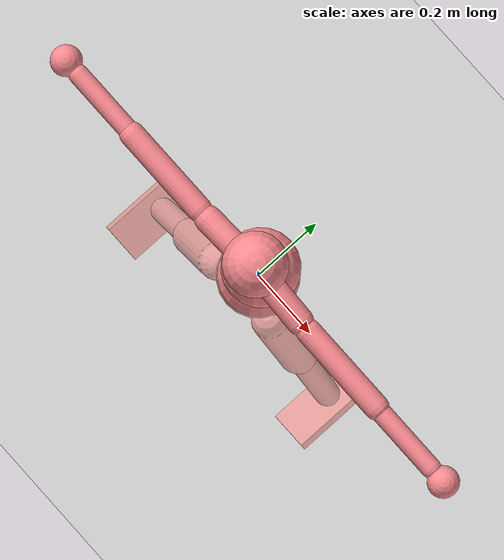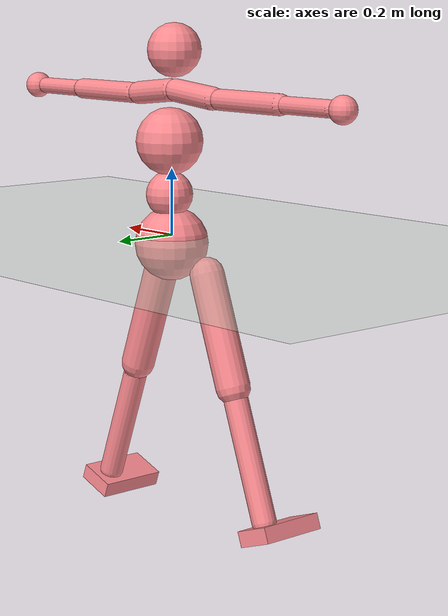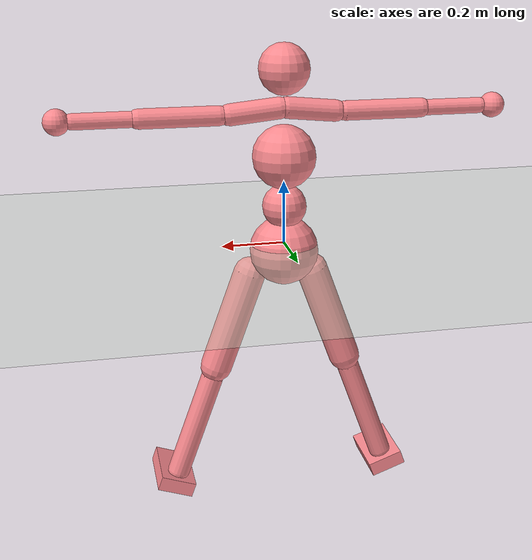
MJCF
<mujoco model="humanoid">
  <compiler angle="radian" inertiafromgeom="true" coordinate="local"/>
  <option timestep="0.00222222" gravity="0 0 -4"/>
  <size njmax="500" nconmax="100"/>
  <visual>
    <quality shadowsize="2048"/>
    <headlight ambient="0.4 0.4 0.4" diffuse="0.8 0.8 0.8" specular="0.3 0.3 0.3"/>
  </visual>
  <statistic extent="3" center="0 0 1"/>
  <default class="main">
    <joint limited="true" armature="0.01"/>
    <geom contype="7" conaffinity="7" condim="1" margin="0.001" material="self" rgba="0.98 0.54 0.56 1"/>
  </default>
  <asset>
    <texture type="2d" name="grid" builtin="checker" mark="edge" rgb1="0.1 0.2 0.3" rgb2="0.2 0.3 0.4" markrgb="0.2 0.3 0.4" width="300" height="300"/>
    <texture type="2d" name="grid_new" builtin="checker" rgb1="0.1 0.3 0.2" rgb2="0.2 0.4 0.3" markrgb="0.8 0.6 0.4" width="1000" height="1000"/>
    <texture type="2d" name="texplane" builtin="checker" rgb1="0 0 0" rgb2="0.8 0.8 0.8" width="100" height="100"/>
    <texture type="2d" name="grass" file="./common/grass.png"/>
    <texture type="skybox" name="sky1" file="./common/sky1.png" gridsize="3 4" gridlayout=".U..LFRB.D.."/>
    <texture type="cube" name="texgeom" builtin="flat" mark="cross" rgb1="0.8 0.6 0.4" rgb2="0.8 0.6 0.4" markrgb="1 1 1" width="127" height="762"/>
    <material name="grid" texture="grid" texuniform="true" reflectance="0.2"/>
    <material name="grid_new" texture="grid_new" texuniform="true" texrepeat="0.2 0.2" reflectance="0.2"/>
    <material name="MatPlane" texture="texplane" texrepeat="60 60" specular="1" shininess="1" reflectance="0.5"/>
    <material name="GrassPlane" texture="grass" texrepeat="400 400" specular="1" shininess="1"/>
    <material name="self" rgba="0.7 0.5 0.3 1"/>
    <material name="self_default" rgba="0.7 0.5 0.3 1"/>
    <material name="self_highlight" rgba="0 0.5 0.3 1"/>
    <material name="effector" rgba="0.7 0.4 0.2 1"/>
    <material name="effector_default" rgba="0.7 0.4 0.2 1"/>
    <material name="effector_highlight" rgba="0 0.5 0.3 1"/>
    <material name="decoration" rgba="0.3 0.5 0.7 1"/>
    <material name="eye" rgba="0 0.2 1 1"/>
    <material name="target" rgba="0.6 0.3 0.3 1"/>
    <material name="target_default" rgba="0.6 0.3 0.3 1"/>
    <material name="target_highlight" rgba="0.6 0.3 0.3 0.4"/>
    <material name="expert" rgba="0.6 0.3 0.3 0.4"/>
  </asset>
  <worldbody>
    <body name="floor" pos="0 0 0">
      <geom name="floor" size="100 100 0.2" pos="0 0 0" type="plane" condim="3" friction="1 0.1 0.1" material="grid_new" rgba="0.8 0.9 0.8 1"/>
      <light pos="0 0 1.3" dir="0 0 -1" directional="true" cutoff="100" exponent="1" diffuse="1 1 1" specular="0.1 0.1 0.1"/>
    </body>
    <body name="root" pos="0 0 0">
      <joint name="root" limited="false" type="free" armature="0"/>
      <geom size="0.11" pos="0 0 -0.024" type="sphere"/>
      <body name="lhipjoint" pos="0 0 0">
        <body name="lfemur" pos="0.0963 -0.0494 -0.0918">
          <joint type="hinge" name="lfemur_z" pos="0 0 0" axis="0 -1 0" range="-1.0472 1.22173"/>
          <joint type="hinge" name="lfemur_y" pos="0 0 0" axis="-0.342 0 0.9397" range="-1.22173 1.22173"/>
          <joint type="hinge" name="lfemur_x" pos="0 0 0" axis="0.9397 0 0.342" range="-2.79253 0.349066"/>
          <geom size="0.052 0.171713" pos="0.06555 0 -0.18015" quat="0.984797 0 -0.173711 0" type="capsule"/>
          <body name="ltibia" pos="0.1311 0 -0.3603">
            <joint type="hinge" name="ltibia_x" pos="0 0 0" axis="0.9397 0 0.342" range="0 2.96706"/>
            <geom size="0.037 0.182183" pos="0.0692 0 -0.19" quat="0.984813 0 -0.173618 0" type="capsule" contype="1" conaffinity="1"/>
            <body name="lfoot" pos="0.1383 0 -0.38">
              <joint type="hinge" name="lfoot_z" pos="0 0 0" axis="-0.342 0 0.9397" range="-1.22173 0.349066"/>
              <joint type="hinge" name="lfoot_y" pos="0 0 0" axis="0 -1 0" range="-0.785398 0.785398"/>
              <joint type="hinge" name="lfoot_x" pos="0 0 0" axis="0.9397 0 0.342" range="-0.785398 1.5708"/>
              <geom size="0.06 0.107 0.024" pos="0.0057 -0.0496 -0.0121" quat="0.984816 0 -0.173603 0" type="box" contype="1" conaffinity="1"/>
            </body>
          </body>
        </body>
      </body>
      <body name="rhipjoint" pos="0 0 0">
        <body name="rfemur" pos="-0.0963 -0.0494 -0.0918">
          <joint type="hinge" name="rfemur_z" pos="0 0 0" axis="0 -1 0" range="-1.22173 1.0472"/>
          <joint type="hinge" name="rfemur_y" pos="0 0 0" axis="0.342 0 0.9397" range="-1.22173 1.22173"/>
          <joint type="hinge" name="rfemur_x" pos="0 0 0" axis="0.9397 0 -0.342" range="-2.79253 0.349066"/>
          <geom size="0.052 0.171713" pos="-0.06555 0 -0.18015" quat="0.984797 0 0.173711 0" type="capsule"/>
          <body name="rtibia" pos="-0.1311 0 -0.3603">
            <joint type="hinge" name="rtibia_x" pos="0 0 0" axis="0.9397 0 -0.342" range="0 2.96706"/>
            <geom size="0.037 0.182183" pos="-0.0692 0 -0.19" quat="0.984813 0 0.173618 0" type="capsule" contype="2" conaffinity="2"/>
            <body name="rfoot" pos="-0.1383 0 -0.38">
              <joint type="hinge" name="rfoot_z" pos="0 0 0" axis="0.342 0 0.9397" range="-0.349066 1.22173"/>
              <joint type="hinge" name="rfoot_y" pos="0 0 0" axis="0 -1 0" range="-0.785398 0.785398"/>
              <joint type="hinge" name="rfoot_x" pos="0 0 0" axis="0.9397 0 -0.342" range="-0.785398 1.5708"/>
              <geom size="0.06 0.107 0.024" pos="-0.0057 -0.0496 -0.0121" quat="0.984816 0 0.173603 0" type="box" contype="2" conaffinity="2"/>
            </body>
          </body>
        </body>
      </body>
      <body name="lowerback" pos="0 0 0">
        <body name="upperback" pos="0.0006 0.0081 0.1132">
          <joint type="hinge" name="upperback_z" pos="0 0 0" axis="0 -1 0" range="-0.523599 0.523599"/>
          <joint type="hinge" name="upperback_y" pos="0 0 0" axis="0 0 1" range="-0.523599 0.523599"/>
          <joint type="hinge" name="upperback_x" pos="0 0 0" axis="1 0 0" range="-0.349066 0.785398"/>
          <geom size="0.07" pos="0 0 0.01" type="sphere"/>
          <body name="thorax" pos="0.0005 -0.001 0.1136">
            <geom size="0.1" pos="0 0 0.054" type="sphere"/>
            <body name="lowerneck" pos="-0.0001 -0.0047 0.1139">
              <joint type="hinge" name="lowerneck_z" pos="0 0 0" axis="0 -1 0" range="-0.523599 0.523599"/>
              <joint type="hinge" name="lowerneck_y" pos="0 0 0" axis="0 0 1" range="-0.523599 0.523599"/>
              <joint type="hinge" name="lowerneck_x" pos="0 0 0" axis="1 0 0" range="-0.349066 0.785398"/>
              <geom size="0.08" pos="-0.0033 -0.0107 0.2065" type="sphere"/>
              <body name="upperneck" pos="-0.0033 -0.0107 0.0905">
                <body name="head" pos="0.001 0.0045 0.09">
                  <camera pos="0.0013 0.0038 -0.5212" quat="0 0 0.707107 0.707107"/>
                </body>
              </body>
              <body name="lclavicle" pos="-0.0033 -0.0107 0.0905">
                <joint type="hinge" name="lclavicle_z" pos="0.0033 0.0107 -0.0905" axis="0 -1 0" range="-0.2 0.349066"/>
                <joint type="hinge" name="lclavicle_y" pos="0.0033 0.0107 -0.0905" axis="0 0 1" range="-0.349066 0.174533"/>
                <geom size="0.034 0.0787335" pos="0.09065 -0.0033 -0.00955" quat="0.743231 -0.0239246 -0.668607 0" type="capsule"/>
                <body name="lhumerus" pos="0.1813 -0.0066 -0.0191">
                  <joint type="hinge" name="lhumerus_z" pos="0 0 0" axis="0 0.866019 -0.500011" range="-1.5708 1.5708"/>
                  <joint type="hinge" name="lhumerus_y" pos="0 0 0" axis="-1 0 0" range="-1.5708 1.5708"/>
                  <joint type="hinge" name="lhumerus_x" pos="0 0 0" axis="0 -0.500011 -0.866019" range="-1.0472 1.5708"/>
                  <geom size="0.031 0.12295" pos="0.14045 0 0" quat="0.707107 0 -0.707107 0" type="capsule"/>
                  <body name="lradius" pos="0.2809 0 0">
                    <joint type="hinge" name="lradius_x" pos="0 0 0" axis="0 -0.500011 -0.866019" range="-0.174533 2.96706"/>
                    <geom size="0.025 0.08875" pos="0.08875 0 0" quat="0.707107 0 -0.707107 0" type="capsule"/>
                    <body name="lwrist" pos="0.1775 0 0">
                      <geom size="0.04" pos="0.044 0 0" type="sphere"/>
                    </body>
                  </body>
                </body>
              </body>
              <body name="rclavicle" pos="0.0013 -0.0107 0.0905">
                <joint type="hinge" name="rclavicle_z" pos="-0.0033 0.0107 -0.0905" axis="0 -1 0" range="-0.349066 0.2"/>
                <joint type="hinge" name="rclavicle_y" pos="-0.0033 0.0107 -0.0905" axis="0 0 1" range="-0.174533 0.349066"/>
                <geom size="0.034 0.0787335" pos="-0.09065 -0.0033 -0.00955" quat="0.743231 -0.0239246 0.668607 0" type="capsule"/>
                <body name="rhumerus" pos="-0.1813 -0.0066 -0.0191">
                  <joint type="hinge" name="rhumerus_z" pos="0 0 0" axis="0 0.866019 -0.500011" range="-1.5708 1.5708"/>
                  <joint type="hinge" name="rhumerus_y" pos="0 0 0" axis="1 0 0" range="-1.5708 1.5708"/>
                  <joint type="hinge" name="rhumerus_x" pos="0 0 0" axis="0 0.500011 0.866019" range="-1.5708 1.0472"/>
                  <geom size="0.031 0.12295" pos="-0.14045 0 0" quat="0.707107 0 0.707107 0" type="capsule"/>
                  <body name="rradius" pos="-0.2809 0 0">
                    <joint type="hinge" name="rradius_x" pos="0 0 0" axis="0 0.500011 0.866019" range="-0.174533 2.96706"/>
                    <geom size="0.025 0.08875" pos="-0.08875 0 0" quat="0.707107 0 0.707107 0" type="capsule"/>
                    <body name="rwrist" pos="-0.1775 0 0">
                      <geom size="0.04" pos="-0.044 0 0" type="sphere"/>
                    </body>
                  </body>
                </body>
              </body>
            </body>
          </body>
        </body>
      </body>
    </body>
  </worldbody>
  <actuator>
    <general name="lfemur_z" joint="lfemur_z"/>
    <general name="lfemur_y" joint="lfemur_y"/>
    <general name="lfemur_x" joint="lfemur_x"/>
    <general name="ltibia_x" joint="ltibia_x"/>
    <general name="lfoot_z" joint="lfoot_z"/>
    <general name="lfoot_y" joint="lfoot_y"/>
    <general name="lfoot_x" joint="lfoot_x"/>
    <general name="rfemur_z" joint="rfemur_z"/>
    <general name="rfemur_y" joint="rfemur_y"/>
    <general name="rfemur_x" joint="rfemur_x"/>
    <general name="rtibia_x" joint="rtibia_x"/>
    <general name="rfoot_z" joint="rfoot_z"/>
    <general name="rfoot_y" joint="rfoot_y"/>
    <general name="rfoot_x" joint="rfoot_x"/>
    <general name="upperback_z" joint="upperback_z"/>
    <general name="upperback_y" joint="upperback_y"/>
    <general name="upperback_x" joint="upperback_x"/>
    <general name="lowerneck_z" joint="lowerneck_z"/>
    <general name="lowerneck_y" joint="lowerneck_y"/>
    <general name="lowerneck_x" joint="lowerneck_x"/>
    <general name="lclavicle_z" joint="lclavicle_z"/>
    <general name="lclavicle_y" joint="lclavicle_y"/>
    <general name="lhumerus_z" joint="lhumerus_z"/>
    <general name="lhumerus_y" joint="lhumerus_y"/>
    <general name="lhumerus_x" joint="lhumerus_x"/>
    <general name="lradius_x" joint="lradius_x"/>
    <general name="rclavicle_z" joint="rclavicle_z"/>
    <general name="rclavicle_y" joint="rclavicle_y"/>
    <general name="rhumerus_z" joint="rhumerus_z"/>
    <general name="rhumerus_y" joint="rhumerus_y"/>
    <general name="rhumerus_x" joint="rhumerus_x"/>
    <general name="rradius_x" joint="rradius_x"/>
  </actuator>
  <contact>
        <exclude name="exclude_lfemur_floor" body1="floor" body2="lfemur"/>
        <exclude name="exclude_ltibia_floor" body1="floor" body2="ltibia"/>
        <exclude name="exclude_rfemur_floor" body1="floor" body2="rfemur"/>
        <exclude name="exclude_rtibia_floor" body1="floor" body2="rtibia"/>
        <exclude name="exclude_upperback_floor" body1="floor" body2="upperback"/>
        <exclude name="exclude_lclavicle_floor" body1="floor" body2="lclavicle"/>
        <exclude name="exclude_rclavicle_floor" body1="floor" body2="rclavicle"/>
        <exclude name="exclude_lhumerus_floor" body1="floor" body2="lhumerus"/>
        <exclude name="exclude_rhumerus_floor" body1="floor" body2="rhumerus"/>
        <exclude name="exclude_lradius_floor" body1="floor" body2="lradius"/>
        <exclude name="exclude_rradius_floor" body1="floor" body2="rradius"/>

        <exclude name="exclude_lfemur_lfoot" body1="lfoot" body2="lfemur"/>
        <exclude name="exclude_ltibia_lfoot" body1="lfoot" body2="ltibia"/>
        <exclude name="exclude_rfemur_lfoot" body1="lfoot" body2="rfemur"/>
        <exclude name="exclude_rtibia_lfoot" body1="lfoot" body2="rtibia"/>
        <exclude name="exclude_upperback_lfoot" body1="lfoot" body2="upperback"/>
        <exclude name="exclude_lclavicle_lfoot" body1="lfoot" body2="lclavicle"/>
        <exclude name="exclude_rclavicle_lfoot" body1="lfoot" body2="rclavicle"/>
        <exclude name="exclude_lhumerus_lfoot" body1="lfoot" body2="lhumerus"/>
        <exclude name="exclude_rhumerus_lfoot" body1="lfoot" body2="rhumerus"/>
        <exclude name="exclude_lradius_lfoot" body1="lfoot" body2="lradius"/>
        <exclude name="exclude_rradius_lfoot" body1="lfoot" body2="rradius"/>

        <exclude name="exclude_lfemur_rfoot" body1="rfoot" body2="lfemur"/>
        <exclude name="exclude_ltibia_rfoot" body1="rfoot" body2="ltibia"/>
        <exclude name="exclude_rfemur_rfoot" body1="rfoot" body2="rfemur"/>
        <exclude name="exclude_rtibia_rfoot" body1="rfoot" body2="rtibia"/>
        <exclude name="exclude_upperback_rfoot" body1="rfoot" body2="upperback"/>
        <exclude name="exclude_lclavicle_rfoot" body1="rfoot" body2="lclavicle"/>
        <exclude name="exclude_rclavicle_rfoot" body1="rfoot" body2="rclavicle"/>
        <exclude name="exclude_lhumerus_rfoot" body1="rfoot" body2="lhumerus"/>
        <exclude name="exclude_rhumerus_rfoot" body1="rfoot" body2="rhumerus"/>
        <exclude name="exclude_lradius_rfoot" body1="rfoot" body2="lradius"/>
        <exclude name="exclude_rradius_rfoot" body1="rfoot" body2="rradius"/>

        <exclude name="exclude_lfemur_thorax" body1="thorax" body2="lfemur"/>
        <exclude name="exclude_ltibia_thorax" body1="thorax" body2="ltibia"/>
        <exclude name="exclude_rfemur_thorax" body1="thorax" body2="rfemur"/>
        <exclude name="exclude_rtibia_thorax" body1="thorax" body2="rtibia"/>
        <exclude name="exclude_upperback_thorax" body1="thorax" body2="upperback"/>
        <exclude name="exclude_lclavicle_thorax" body1="thorax" body2="lclavicle"/>
        <exclude name="exclude_rclavicle_thorax" body1="thorax" body2="rclavicle"/>
        <exclude name="exclude_lhumerus_thorax" body1="thorax" body2="lhumerus"/>
        <exclude name="exclude_rhumerus_thorax" body1="thorax" body2="rhumerus"/>
        <exclude name="exclude_lradius_thorax" body1="thorax" body2="lradius"/>
        <exclude name="exclude_rradius_thorax" body1="thorax" body2="rradius"/>

        <exclude name="exclude_lfemur_lowerneck" body1="lowerneck" body2="lfemur"/>
        <exclude name="exclude_ltibia_lowerneck" body1="lowerneck" body2="ltibia"/>
        <exclude name="exclude_rfemur_lowerneck" body1="lowerneck" body2="rfemur"/>
        <exclude name="exclude_rtibia_lowerneck" body1="lowerneck" body2="rtibia"/>
        <exclude name="exclude_upperback_lowerneck" body1="lowerneck" body2="upperback"/>
        <exclude name="exclude_lclavicle_lowerneck" body1="lowerneck" body2="lclavicle"/>
        <exclude name="exclude_rclavicle_lowerneck" body1="lowerneck" body2="rclavicle"/>
        <exclude name="exclude_lhumerus_lowerneck" body1="lowerneck" body2="lhumerus"/>
        <exclude name="exclude_rhumerus_lowerneck" body1="lowerneck" body2="rhumerus"/>
        <exclude name="exclude_lradius_lowerneck" body1="lowerneck" body2="lradius"/>
        <exclude name="exclude_rradius_lowerneck" body1="lowerneck" body2="rradius"/>

        <exclude name="exclude_lfemur_upperback" body1="upperback" body2="lfemur"/>
        <exclude name="exclude_ltibia_upperback" body1="upperback" body2="ltibia"/>
        <exclude name="exclude_rfemur_upperback" body1="upperback" body2="rfemur"/>
        <exclude name="exclude_rtibia_upperback" body1="upperback" body2="rtibia"/>
        <exclude name="exclude_lclavicle_upperback" body1="upperback" body2="lclavicle"/>
        <exclude name="exclude_rclavicle_upperback" body1="upperback" body2="rclavicle"/>
        <exclude name="exclude_lhumerus_upperback" body1="upperback" body2="lhumerus"/>
        <exclude name="exclude_rhumerus_upperback" body1="upperback" body2="rhumerus"/>
        <exclude name="exclude_lradius_upperback" body1="upperback" body2="lradius"/>
        <exclude name="exclude_rradius_upperback" body1="upperback" body2="rradius"/>

        <exclude name="exclude_lfemur_lhumerus" body1="lhumerus" body2="lfemur"/>
        <exclude name="exclude_ltibia_lhumerus" body1="lhumerus" body2="ltibia"/>
        <exclude name="exclude_rfemur_lhumerus" body1="lhumerus" body2="rfemur"/>
        <exclude name="exclude_rtibia_lhumerus" body1="lhumerus" body2="rtibia"/>
        <exclude name="exclude_lclavicle_lhumerus" body1="lhumerus" body2="lclavicle"/>
        <exclude name="exclude_rclavicle_lhumerus" body1="lhumerus" body2="rclavicle"/>
        <exclude name="exclude_rhumerus_lhumerus" body1="lhumerus" body2="rhumerus"/>
        <exclude name="exclude_lradius_lhumerus" body1="lhumerus" body2="lradius"/>
        <exclude name="exclude_rradius_lhumerus" body1="lhumerus" body2="rradius"/>

        <exclude name="exclude_lfemur_rhumerus" body1="rhumerus" body2="lfemur"/>
        <exclude name="exclude_ltibia_rhumerus" body1="rhumerus" body2="ltibia"/>
        <exclude name="exclude_rfemur_rhumerus" body1="rhumerus" body2="rfemur"/>
        <exclude name="exclude_rtibia_rhumerus" body1="rhumerus" body2="rtibia"/>
        <exclude name="exclude_lclavicle_rhumerus" body1="rhumerus" body2="lclavicle"/>
        <exclude name="exclude_rclavicle_rhumerus" body1="rhumerus" body2="rclavicle"/>
        <exclude name="exclude_lradius_rhumerus" body1="rhumerus" body2="lradius"/>
        <exclude name="exclude_rradius_rhumerus" body1="rhumerus" body2="rradius"/>

        <exclude name="exclude_lfemur_lradius" body1="lradius" body2="lfemur"/>
        <exclude name="exclude_ltibia_lradius" body1="lradius" body2="ltibia"/>
        <exclude name="exclude_rfemur_lradius" body1="lradius" body2="rfemur"/>
        <exclude name="exclude_rtibia_lradius" body1="lradius" body2="rtibia"/>
        <exclude name="exclude_lclavicle_lradius" body1="lradius" body2="lclavicle"/>
        <exclude name="exclude_rclavicle_lradius" body1="lradius" body2="rclavicle"/>
        <exclude name="exclude_rradius_lradius" body1="lradius" body2="rradius"/>

        <exclude name="exclude_lfemur_rradius" body1="rradius" body2="lfemur"/>
        <exclude name="exclude_ltibia_rradius" body1="rradius" body2="ltibia"/>
        <exclude name="exclude_rfemur_rradius" body1="rradius" body2="rfemur"/>
        <exclude name="exclude_rtibia_rradius" body1="rradius" body2="rtibia"/>
        <exclude name="exclude_lclavicle_rradius" body1="rradius" body2="lclavicle"/>
        <exclude name="exclude_rclavicle_rradius" body1="rradius" body2="rclavicle"/>

        <exclude name="exclude_rfemur_lfemur" body1="rfemur" body2="lfemur"/>
        <exclude name="exclude_lfemur_rtibia" body1="lfemur" body2="rtibia"/>
        <exclude name="exclude_rfemur_ltibia" body1="rfemur" body2="ltibia"/>
        <exclude name="exclude_rtibia_ltibia" body1="rtibia" body2="ltibia"/>
        <exclude name="exclude_lclavicle_rclavicle" body1="lclavicle" body2="rclavicle"/>

  </contact>
</mujoco>
